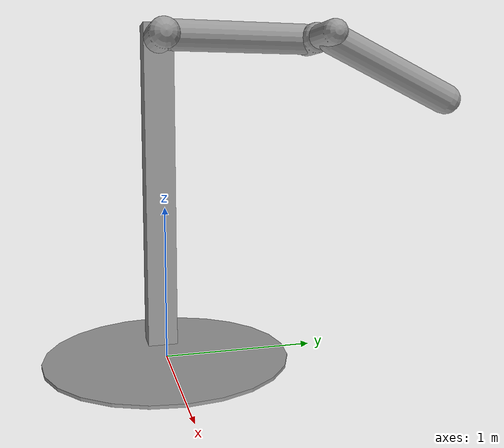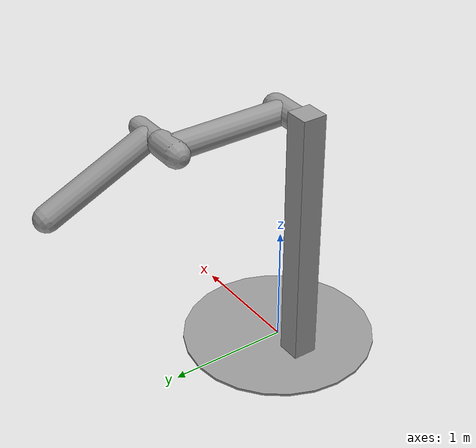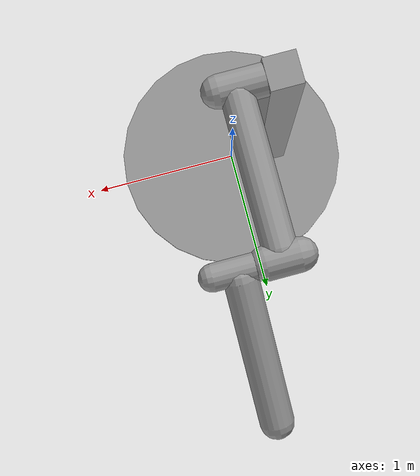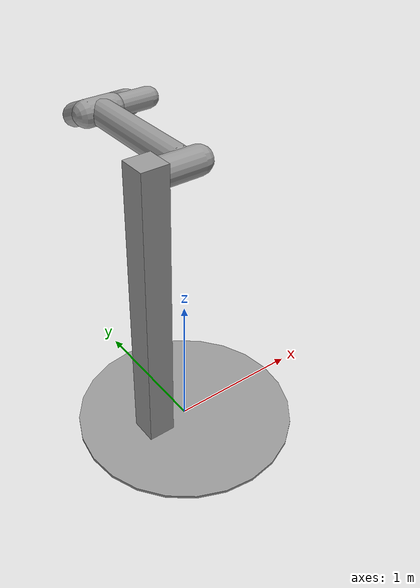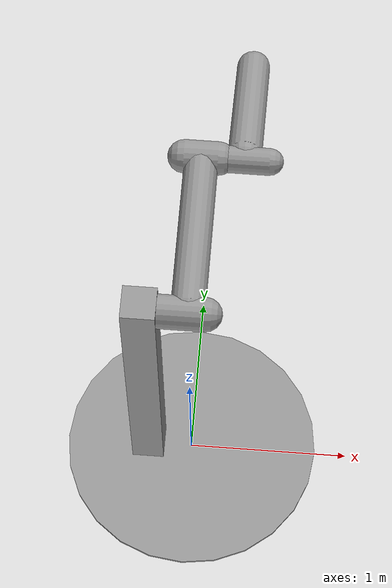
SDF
<?xml version='1.0'?>
<sdf version="1.4">
  <model name="double_pendulum_with_base">
    <joint name="fix_to_world" type="fixed">
      <parent>world</parent>
      <child>base</child>
    </joint>
    <link name="base">
      <inertial>
        <mass>100</mass>
      </inertial>
      <visual name="vis_plate_on_ground">
        <pose>0 0 0.01  0 0 0</pose>
        <geometry>
          <cylinder>
            <radius>0.8</radius>
            <length>0.02</length>
          </cylinder>
        </geometry>
        <material>
          <script>
            <uri>file://media/materials/scripts/gazebo.material</uri>
            <name>Gazebo/Grey</name>
          </script>
        </material>
      </visual>
      <visual name="vis_pole">
        <pose>-0.275 0 1.1  0 0 0</pose>
        <geometry>
          <box><size>0.2 0.2 2.2</size></box>
        </geometry>
        <material>
          <script>
            <uri>file://media/materials/scripts/gazebo.material</uri>
            <name>Gazebo/Grey</name>
          </script>
        </material>
      </visual>
      <collision name="col_plate_on_ground">
        <pose>0 0 0.01  0 0 0</pose>
        <geometry>
          <cylinder>
            <radius>0.8</radius>
            <length>0.02</length>
          </cylinder>
        </geometry>
      </collision>
      <collision name="col_pole">
        <pose>-0.275 0 1.1  0 0 0</pose>
        <geometry>
          <box><size>0.2 0.2 2.2</size></box>
        </geometry>
      </collision>
    </link>
    <!-- upper link, length 1, IC -90 degrees -->
    <link name="upper_link">
      <pose>0 0 2.1  -1.5708 0 0</pose>
      <self_collide>0</self_collide>
      <inertial>
        <pose>0 0 0.5  0 0 0</pose>
      </inertial>
      <visual name="vis_upper_joint">
        <pose>-0.05 0 0  0 1.5708 0</pose>
        <geometry>
          <capsule>
            <radius>0.1</radius>
            <length>0.3</length>
          </capsule>
        </geometry>
        <material>
          <script>
            <uri>file://media/materials/scripts/gazebo.material</uri>
            <name>Gazebo/Grey</name>
          </script>
        </material>
      </visual>
      <visual name="vis_lower_joint">
        <pose>0 0 1.0  0 1.5708 0</pose>
        <geometry>
          <capsule>
            <radius>0.1</radius>
            <length>0.2</length>
          </capsule>
        </geometry>
        <material>
          <script>
            <uri>file://media/materials/scripts/gazebo.material</uri>
            <name>Gazebo/Grey</name>
          </script>
        </material>
      </visual>
      <visual name="vis_cylinder">
        <pose>0 0 0.5  0 0 0</pose>
        <geometry>
          <capsule>
            <radius>0.1</radius>
            <length>0.9</length>
          </capsule>
        </geometry>
        <material>
          <script>
            <uri>file://media/materials/scripts/gazebo.material</uri>
            <name>Gazebo/Grey</name>
          </script>
        </material>
      </visual>
      <collision name="col_upper_joint">
        <pose>-0.05 0 0  0 1.5708 0</pose>
        <geometry>
          <capsule>
            <radius>0.1</radius>
            <length>0.3</length>
          </capsule>
        </geometry>
      </collision>
      <collision name="col_lower_joint">
        <pose>0 0 1.0  0 1.5708 0</pose>
        <geometry>
          <capsule>
            <radius>0.1</radius>
            <length>0.2</length>
          </capsule>
        </geometry>
      </collision>
      <collision name="col_cylinder">
        <pose>0 0 0.5  0 0 0</pose>
        <geometry>
          <capsule>
            <radius>0.1</radius>
            <length>0.9</length>
          </capsule>
        </geometry>
      </collision>
    </link>
    <!-- lower link, length 1, IC ~-120 degrees more -->
    <link name="lower_link">
      <pose>0.25 1.0 2.1  -2 0 0</pose>
      <self_collide>0</self_collide>
      <inertial>
        <pose>0 0 0.5  0 0 0</pose>
      </inertial>
      <visual name="vis_lower_joint">
        <pose>0 0 0  0 1.5708 0</pose>
        <geometry>
          <capsule>
            <radius>0.08</radius>
            <length>0.3</length>
          </capsule>
        </geometry>
        <material>
          <script>
            <uri>file://media/materials/scripts/gazebo.material</uri>
            <name>Gazebo/Grey</name>
          </script>
        </material>
      </visual>
      <visual name="vis_cylinder">
        <pose>0 0 0.5  0 0 0</pose>
        <geometry>
          <capsule>
            <radius>0.1</radius>
            <length>0.9</length>
          </capsule>
        </geometry>
        <material>
          <script>
            <uri>file://media/materials/scripts/gazebo.material</uri>
            <name>Gazebo/Grey</name>
          </script>
        </material>
      </visual>
      <collision name="col_lower_joint2">
        <pose>0 0 0  0 1.5708 0</pose>
        <geometry>
          <capsule>
            <radius>0.08</radius>
            <length>0.3</length>
          </capsule>
        </geometry>
      </collision>
      <collision name="col_cylinder2">
        <pose>0 0 0.5  0 0 0</pose>
        <geometry>
          <capsule>
            <radius>0.1</radius>
            <length>0.9</length>
          </capsule>
        </geometry>
      </collision>
    </link>
    <!-- pin joint for upper link, at origin of upper link -->
    <joint name="upper_joint" type="revolute">
      <parent>base</parent>
      <child>upper_link</child>
      <axis>
        <xyz>1.0 0 0</xyz>
      </axis>
    </joint>
    <!-- pin joint for lower link, at origin of child link -->
    <joint name="lower_joint" type="revolute">
      <parent>upper_link</parent>
      <child>lower_link</child>
      <axis>
        <xyz>1.0 0 0</xyz>
      </axis>
    </joint>
  </model>
</sdf>
